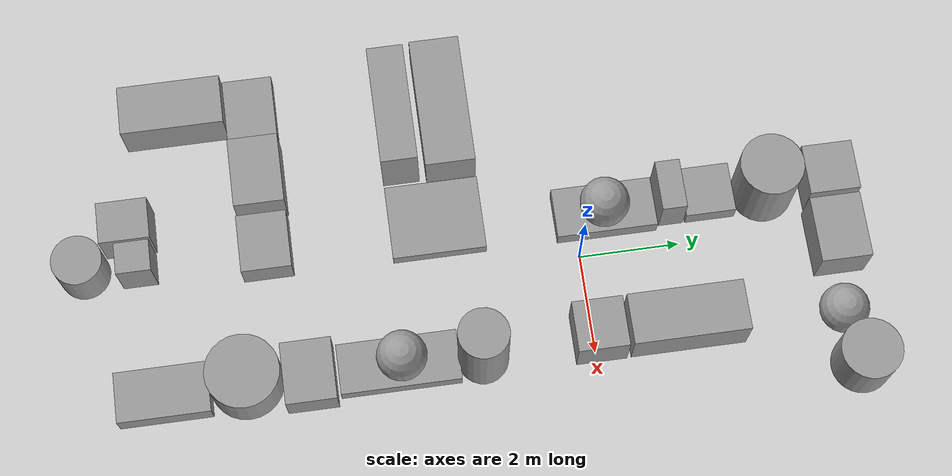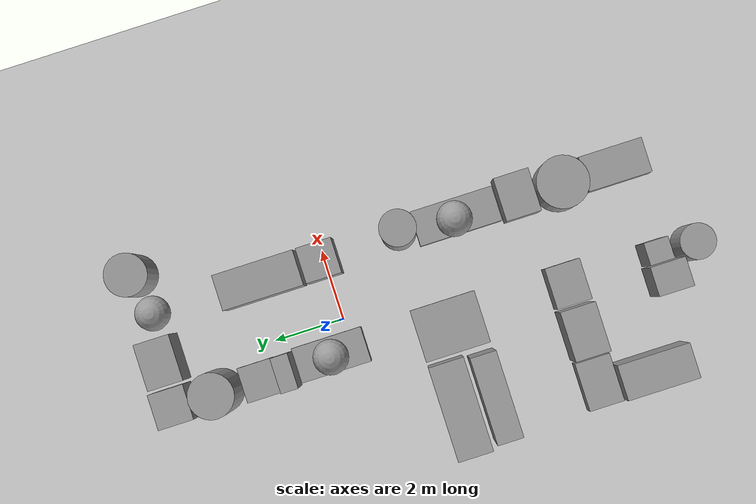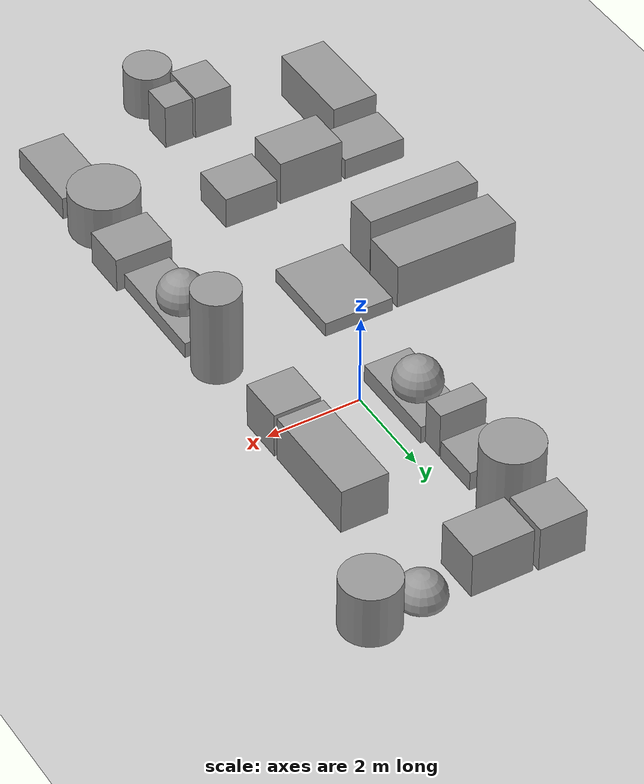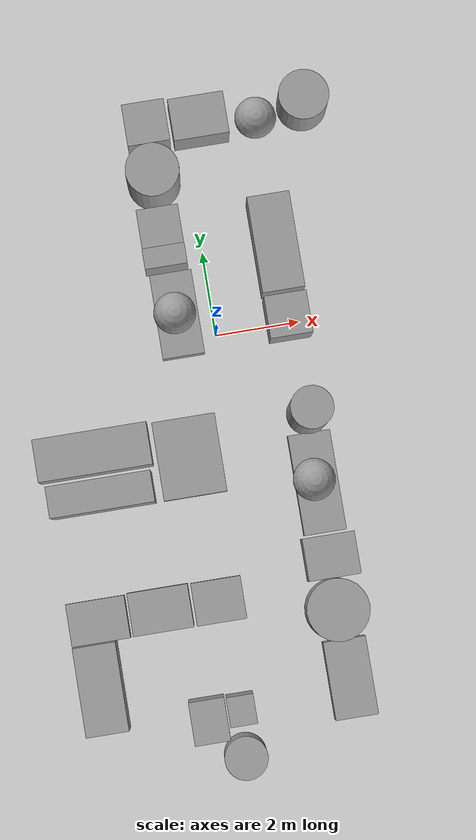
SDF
<sdf version="1.6">
 <world name="default">
  <model name="ground_plane">
   <static>1</static>
   <link name="link">
    <collision name="collision">
     <geometry><plane><normal>0 0 1</normal><size>100 100</size></plane></geometry>
     <surface>
      <contact><collide_bitmask>65535</collide_bitmask></contact>
      <friction><ode><mu>100</mu><mu2>50</mu2></ode></friction>
     </surface>
    </collision>
    <visual name="visual">
     <cast_shadows>0</cast_shadows>
     <geometry><plane><normal>0 0 1</normal><size>100 100</size></plane></geometry>
     <material>
      <script><uri>file://media/materials/scripts/gazebo.material</uri><name>Gazebo/Grey</name></script>
     </material>
    </visual>
   </link>
  </model>
  <model name="buildings">
   <link name="link_0">
    <inertial>
     <mass>2.05987</mass>
     <inertia><ixx>0.9</ixx><ixy>0</ixy><ixz>0</ixz><iyy>0.343312</iyy><iyz>0</iyz><izz>0.9</izz></inertia>
    </inertial>
    <pose>-3.65731 -5.49674 0.040889 0 -0 0</pose>
    <visual name="visual">
     <geometry><box><size>1 2.05987 1</size></box></geometry>
     <material>
      <lighting>1</lighting>
      <script><uri>file://media/materials/scripts/gazebo.material</uri><name>Gazebo/Grey</name></script>
     </material>
    </visual>
    <collision name="collision">
     <geometry><box><size>1 2.05987 1</size></box></geometry>
     <surface>
      <friction>
       <ode><mu>1</mu><mu2>1</mu2><fdir1>0 0 0</fdir1><slip1>0</slip1><slip2>0</slip2></ode>
       <torsional>
        <coefficient>1</coefficient>
        <patch_radius>0</patch_radius>
        <surface_radius>0</surface_radius>
        <use_patch_radius>1</use_patch_radius>
        <ode><slip>0</slip></ode>
       </torsional>
      </friction>
      <bounce><restitution_coefficient>0</restitution_coefficient><threshold>1e+06</threshold></bounce>
      <contact>
       <collide_without_contact>0</collide_without_contact>
       <collide_without_contact_bitmask>1</collide_without_contact_bitmask>
       <collide_bitmask>1</collide_bitmask>
       <ode>
        <soft_cfm>0</soft_cfm>
        <soft_erp>0.2</soft_erp>
        <kp>1e+13</kp>
        <kd>1</kd>
        <max_vel>0.01</max_vel>
        <min_depth>0</min_depth>
       </ode>
       <bullet>
        <split_impulse>1</split_impulse>
        <split_impulse_penetration_threshold>-0.01</split_impulse_penetration_threshold>
        <soft_cfm>0</soft_cfm>
        <soft_erp>0.2</soft_erp>
        <kp>1e+13</kp>
        <kd>1</kd>
       </bullet>
      </contact>
     </surface>
    </collision>
   </link>
   <link name="link_1">
    <inertial>
     <mass>0.657597</mass>
     <inertia>
      <ixx>0.067355</ixx>
      <ixy>0</ixy>
      <ixz>0</ixz>
      <iyy>0.115971</iyy>
      <iyz>0</iyz>
      <izz>0.158216</izz>
     </inertia>
    </inertial>
    <pose>-3.50191 -3.95273 -0.145196 0 -0 0</pose>
    <visual name="visual">
     <geometry><box><size>1.37374 1 0.478656</size></box></geometry>
     <material>
      <lighting>1</lighting>
      <script><uri>file://media/materials/scripts/gazebo.material</uri><name>Gazebo/Grey</name></script>
     </material>
    </visual>
    <collision name="collision">
     <geometry><box><size>1.37374 1 0.478656</size></box></geometry>
     <surface>
      <friction>
       <ode><mu>1</mu><mu2>1</mu2><fdir1>0 0 0</fdir1><slip1>0</slip1><slip2>0</slip2></ode>
       <torsional>
        <coefficient>1</coefficient>
        <patch_radius>0</patch_radius>
        <surface_radius>0</surface_radius>
        <use_patch_radius>1</use_patch_radius>
        <ode><slip>0</slip></ode>
       </torsional>
      </friction>
      <bounce><restitution_coefficient>0</restitution_coefficient><threshold>1e+06</threshold></bounce>
      <contact>
       <collide_without_contact>0</collide_without_contact>
       <collide_without_contact_bitmask>1</collide_without_contact_bitmask>
       <collide_bitmask>1</collide_bitmask>
       <ode>
        <soft_cfm>0</soft_cfm>
        <soft_erp>0.2</soft_erp>
        <kp>1e+13</kp>
        <kd>1</kd>
        <max_vel>0.01</max_vel>
        <min_depth>0</min_depth>
       </ode>
       <bullet>
        <split_impulse>1</split_impulse>
        <split_impulse_penetration_threshold>-0.01</split_impulse_penetration_threshold>
        <soft_cfm>0</soft_cfm>
        <soft_erp>0.2</soft_erp>
        <kp>1e+13</kp>
        <kd>1</kd>
       </bullet>
      </contact>
     </surface>
    </collision>
   </link>
   <link name="link_10">
    <inertial>
     <mass>1.22906</mass>
     <inertia>
      <ixx>0.204843</ixx>
      <ixy>0</ixy>
      <ixz>0</ixz>
      <iyy>0.257137</iyy>
      <iyz>0</iyz>
      <izz>0.257137</izz>
     </inertia>
    </inertial>
    <pose>2.09374 -3.3423 -0.211317 0 -0 0</pose>
    <visual name="visual">
     <geometry><box><size>1.22906 1 1</size></box></geometry>
     <material>
      <lighting>1</lighting>
      <script><uri>file://media/materials/scripts/gazebo.material</uri><name>Gazebo/Grey</name></script>
     </material>
    </visual>
    <collision name="collision">
     <geometry><box><size>1.22906 1 1</size></box></geometry>
     <surface>
      <friction>
       <ode><mu>1</mu><mu2>1</mu2><fdir1>0 0 0</fdir1><slip1>0</slip1><slip2>0</slip2></ode>
       <torsional>
        <coefficient>1</coefficient>
        <patch_radius>0</patch_radius>
        <surface_radius>0</surface_radius>
        <use_patch_radius>1</use_patch_radius>
        <ode><slip>0</slip></ode>
       </torsional>
      </friction>
      <bounce><restitution_coefficient>0</restitution_coefficient><threshold>1e+06</threshold></bounce>
      <contact>
       <collide_without_contact>0</collide_without_contact>
       <collide_without_contact_bitmask>1</collide_without_contact_bitmask>
       <collide_bitmask>1</collide_bitmask>
       <ode>
        <soft_cfm>0</soft_cfm>
        <soft_erp>0.2</soft_erp>
        <kp>1e+13</kp>
        <kd>1</kd>
        <max_vel>0.01</max_vel>
        <min_depth>0</min_depth>
       </ode>
       <bullet>
        <split_impulse>1</split_impulse>
        <split_impulse_penetration_threshold>-0.01</split_impulse_penetration_threshold>
        <soft_cfm>0</soft_cfm>
        <soft_erp>0.2</soft_erp>
        <kp>1e+13</kp>
        <kd>1</kd>
       </bullet>
      </contact>
     </surface>
    </collision>
   </link>
   <link name="link_11">
    <inertial>
     <mass>2.12736</mass>
     <inertia>
      <ixx>0.460131</ixx>
      <ixy>0</ixy>
      <ixz>0</ixz>
      <iyy>0.460131</iyy>
      <iyz>0</iyz>
      <izz>0.565703</izz>
     </inertia>
    </inertial>
    <pose>2.02003 -4.57597 0.124873 0 -0 0</pose>
    <visual name="visual">
     <geometry><cylinder><radius>0.729271</radius><length>1</length></cylinder></geometry>
     <material>
      <lighting>1</lighting>
      <script><uri>file://media/materials/scripts/gazebo.material</uri><name>Gazebo/Grey</name></script>
     </material>
    </visual>
    <collision name="collision">
     <geometry><cylinder><radius>0.729271</radius><length>1</length></cylinder></geometry>
     <surface>
      <friction>
       <ode><mu>1</mu><mu2>1</mu2><fdir1>0 0 0</fdir1><slip1>0</slip1><slip2>0</slip2></ode>
       <torsional>
        <coefficient>1</coefficient>
        <patch_radius>0</patch_radius>
        <surface_radius>0</surface_radius>
        <use_patch_radius>1</use_patch_radius>
        <ode><slip>0</slip></ode>
       </torsional>
      </friction>
      <bounce><restitution_coefficient>0</restitution_coefficient><threshold>1e+06</threshold></bounce>
      <contact>
       <collide_without_contact>0</collide_without_contact>
       <collide_without_contact_bitmask>1</collide_without_contact_bitmask>
       <collide_bitmask>1</collide_bitmask>
       <ode>
        <soft_cfm>0</soft_cfm>
        <soft_erp>0.2</soft_erp>
        <kp>1e+13</kp>
        <kd>1</kd>
        <max_vel>0.01</max_vel>
        <min_depth>0</min_depth>
       </ode>
       <bullet>
        <split_impulse>1</split_impulse>
        <split_impulse_penetration_threshold>-0.01</split_impulse_penetration_threshold>
        <soft_cfm>0</soft_cfm>
        <soft_erp>0.2</soft_erp>
        <kp>1e+13</kp>
        <kd>1</kd>
       </bullet>
      </contact>
     </surface>
    </collision>
   </link>
   <link name="link_12">
    <inertial>
     <mass>0.922792</mass>
     <inertia>
      <ixx>0.275517</ixx>
      <ixy>0</ixy>
      <ixz>0</ixz>
      <iyy>0.0965958</iyy>
      <iyz>0</iyz>
      <izz>0.33272</izz>
     </inertia>
    </inertial>
    <pose>2.07608 -6.19758 -0.205607 0 -0 0</pose>
    <visual name="visual">
     <geometry><box><size>1 1.82392 0.506096</size></box></geometry>
     <material>
      <lighting>1</lighting>
      <script><uri>file://media/materials/scripts/gazebo.material</uri><name>Gazebo/Grey</name></script>
     </material>
    </visual>
    <collision name="collision">
     <geometry><box><size>1 1.82392 0.506096</size></box></geometry>
     <surface>
      <friction>
       <ode><mu>1</mu><mu2>1</mu2><fdir1>0 0 0</fdir1><slip1>0</slip1><slip2>0</slip2></ode>
       <torsional>
        <coefficient>1</coefficient>
        <patch_radius>0</patch_radius>
        <surface_radius>0</surface_radius>
        <use_patch_radius>1</use_patch_radius>
        <ode><slip>0</slip></ode>
       </torsional>
      </friction>
      <bounce><restitution_coefficient>0</restitution_coefficient><threshold>1e+06</threshold></bounce>
      <contact>
       <collide_without_contact>0</collide_without_contact>
       <collide_without_contact_bitmask>1</collide_without_contact_bitmask>
       <collide_bitmask>1</collide_bitmask>
       <ode>
        <soft_cfm>0</soft_cfm>
        <soft_erp>0.2</soft_erp>
        <kp>1e+13</kp>
        <kd>1</kd>
        <max_vel>0.01</max_vel>
        <min_depth>0</min_depth>
       </ode>
       <bullet>
        <split_impulse>1</split_impulse>
        <split_impulse_penetration_threshold>-0.01</split_impulse_penetration_threshold>
        <soft_cfm>0</soft_cfm>
        <soft_erp>0.2</soft_erp>
        <kp>1e+13</kp>
        <kd>1</kd>
       </bullet>
      </contact>
     </surface>
    </collision>
   </link>
   <link name="link_13">
    <inertial>
     <mass>0.867163</mass>
     <inertia>
      <ixx>0.259684</ixx>
      <ixy>0</ixy>
      <ixz>0</ixz>
      <iyy>0.169359</iyy>
      <iyz>0</iyz>
      <izz>0.415215</izz>
     </inertia>
    </inertial>
    <pose>-0.790765 -0.511354 -0.245848 0 -0 0</pose>
    <visual name="visual">
     <geometry><box><size>1.49932 1.87027 0.309309</size></box></geometry>
     <material>
      <lighting>1</lighting>
      <script><uri>file://media/materials/scripts/gazebo.material</uri><name>Gazebo/Grey</name></script>
     </material>
    </visual>
    <collision name="collision">
     <geometry><box><size>1.49932 1.87027 0.309309</size></box></geometry>
     <surface>
      <friction>
       <ode><mu>1</mu><mu2>1</mu2><fdir1>0 0 0</fdir1><slip1>0</slip1><slip2>0</slip2></ode>
       <torsional>
        <coefficient>1</coefficient>
        <patch_radius>0</patch_radius>
        <surface_radius>0</surface_radius>
        <use_patch_radius>1</use_patch_radius>
        <ode><slip>0</slip></ode>
       </torsional>
      </friction>
      <bounce><restitution_coefficient>0</restitution_coefficient><threshold>1e+06</threshold></bounce>
      <contact>
       <collide_without_contact>0</collide_without_contact>
       <collide_without_contact_bitmask>1</collide_without_contact_bitmask>
       <collide_bitmask>1</collide_bitmask>
       <ode>
        <soft_cfm>0</soft_cfm>
        <soft_erp>0.2</soft_erp>
        <kp>1e+13</kp>
        <kd>1</kd>
        <max_vel>0.01</max_vel>
        <min_depth>0</min_depth>
       </ode>
       <bullet>
        <split_impulse>1</split_impulse>
        <split_impulse_penetration_threshold>-0.01</split_impulse_penetration_threshold>
        <soft_cfm>0</soft_cfm>
        <soft_erp>0.2</soft_erp>
        <kp>1e+13</kp>
        <kd>1</kd>
       </bullet>
      </contact>
     </surface>
    </collision>
   </link>
   <link name="link_14">
    <inertial>
     <mass>2.79733</mass>
     <inertia><ixx>0.692471</ixx><ixy>0</ixy><ixz>0</ixz><iyy>1.95677</iyy><iyz>0</iyz><izz>1.51593</izz></inertia>
    </inertial>
    <pose>-2.95025 -1.08442 0.124873 0 -0 0</pose>
    <visual name="visual">
     <geometry><box><size>2.44199 0.734656 1.55912</size></box></geometry>
     <material>
      <lighting>1</lighting>
      <script><uri>file://media/materials/scripts/gazebo.material</uri><name>Gazebo/Grey</name></script>
     </material>
    </visual>
    <collision name="collision">
     <geometry><box><size>2.44199 0.734656 1.55912</size></box></geometry>
     <surface>
      <friction>
       <ode><mu>1</mu><mu2>1</mu2><fdir1>0 0 0</fdir1><slip1>0</slip1><slip2>0</slip2></ode>
       <torsional>
        <coefficient>1</coefficient>
        <patch_radius>0</patch_radius>
        <surface_radius>0</surface_radius>
        <use_patch_radius>1</use_patch_radius>
        <ode><slip>0</slip></ode>
       </torsional>
      </friction>
      <bounce><restitution_coefficient>0</restitution_coefficient><threshold>1e+06</threshold></bounce>
      <contact>
       <collide_without_contact>0</collide_without_contact>
       <collide_without_contact_bitmask>1</collide_without_contact_bitmask>
       <collide_bitmask>1</collide_bitmask>
       <ode>
        <soft_cfm>0</soft_cfm>
        <soft_erp>0.2</soft_erp>
        <kp>1e+13</kp>
        <kd>1</kd>
        <max_vel>0.01</max_vel>
        <min_depth>0</min_depth>
       </ode>
       <bullet>
        <split_impulse>1</split_impulse>
        <split_impulse_penetration_threshold>-0.01</split_impulse_penetration_threshold>
        <soft_cfm>0</soft_cfm>
        <soft_erp>0.2</soft_erp>
        <kp>1e+13</kp>
        <kd>1</kd>
       </bullet>
      </contact>
     </surface>
    </collision>
   </link>
   <link name="link_15">
    <inertial>
     <mass>0.795978</mass>
     <inertia>
      <ixx>0.279163</ixx>
      <ixy>0</ixy>
      <ixz>0</ixz>
      <iyy>0.0767026</iyy>
      <iyz>0</iyz>
      <izz>0.335124</izz>
     </inertia>
    </inertial>
    <pose>-0.533513 2.86402 -0.241441 0 -0 0</pose>
    <visual name="visual">
     <geometry><box><size>1 2.01302 0.395414</size></box></geometry>
     <material>
      <lighting>1</lighting>
      <script><uri>file://media/materials/scripts/gazebo.material</uri><name>Gazebo/Grey</name></script>
     </material>
    </visual>
    <collision name="collision">
     <geometry><box><size>1 2.01302 0.395414</size></box></geometry>
     <surface>
      <friction>
       <ode><mu>1</mu><mu2>1</mu2><fdir1>0 0 0</fdir1><slip1>0</slip1><slip2>0</slip2></ode>
       <torsional>
        <coefficient>1</coefficient>
        <patch_radius>0</patch_radius>
        <surface_radius>0</surface_radius>
        <use_patch_radius>1</use_patch_radius>
        <ode><slip>0</slip></ode>
       </torsional>
      </friction>
      <bounce><restitution_coefficient>0</restitution_coefficient><threshold>1e+06</threshold></bounce>
      <contact>
       <collide_without_contact>0</collide_without_contact>
       <collide_without_contact_bitmask>1</collide_without_contact_bitmask>
       <collide_bitmask>1</collide_bitmask>
       <ode>
        <soft_cfm>0</soft_cfm>
        <soft_erp>0.2</soft_erp>
        <kp>1e+13</kp>
        <kd>1</kd>
        <max_vel>0.01</max_vel>
        <min_depth>0</min_depth>
       </ode>
       <bullet>
        <split_impulse>1</split_impulse>
        <split_impulse_penetration_threshold>-0.01</split_impulse_penetration_threshold>
        <soft_cfm>0</soft_cfm>
        <soft_erp>0.2</soft_erp>
        <kp>1e+13</kp>
        <kd>1</kd>
       </bullet>
      </contact>
     </surface>
    </collision>
   </link>
   <link name="link_16">
    <inertial>
     <mass>0.490895</mass>
     <inertia>
      <ixx>0.0507658</ixx>
      <ixy>0</ixy>
      <ixz>0</ixz>
      <iyy>0.0818158</iyy>
      <iyz>0</iyz>
      <izz>0.0507658</izz>
     </inertia>
    </inertial>
    <pose>-0.602063 4.16739 0.124873 0 -0 0</pose>
    <visual name="visual">
     <geometry><box><size>1 0.490896 1</size></box></geometry>
     <material>
      <lighting>1</lighting>
      <script><uri>file://media/materials/scripts/gazebo.material</uri><name>Gazebo/Grey</name></script>
     </material>
    </visual>
    <collision name="collision">
     <geometry><box><size>1 0.490896 1</size></box></geometry>
     <surface>
      <friction>
       <ode><mu>1</mu><mu2>1</mu2><fdir1>0 0 0</fdir1><slip1>0</slip1><slip2>0</slip2></ode>
       <torsional>
        <coefficient>1</coefficient>
        <patch_radius>0</patch_radius>
        <surface_radius>0</surface_radius>
        <use_patch_radius>1</use_patch_radius>
        <ode><slip>0</slip></ode>
       </torsional>
      </friction>
      <bounce><restitution_coefficient>0</restitution_coefficient><threshold>1e+06</threshold></bounce>
      <contact>
       <collide_without_contact>0</collide_without_contact>
       <collide_without_contact_bitmask>1</collide_without_contact_bitmask>
       <collide_bitmask>1</collide_bitmask>
       <ode>
        <soft_cfm>0</soft_cfm>
        <soft_erp>0.2</soft_erp>
        <kp>1e+13</kp>
        <kd>1</kd>
        <max_vel>0.01</max_vel>
        <min_depth>0</min_depth>
       </ode>
       <bullet>
        <split_impulse>1</split_impulse>
        <split_impulse_penetration_threshold>-0.01</split_impulse_penetration_threshold>
        <soft_cfm>0</soft_cfm>
        <soft_erp>0.2</soft_erp>
        <kp>1e+13</kp>
        <kd>1</kd>
       </bullet>
      </contact>
     </surface>
    </collision>
   </link>
   <link name="link_17">
    <inertial>
     <mass>0.420034</mass>
     <inertia>
      <ixx>0.0411783</ixx>
      <ixy>0</ixy>
      <ixz>0</ixz>
      <iyy>0.0411783</iyy>
      <iyz>0</iyz>
      <izz>0.0700057</izz>
     </inertia>
    </inertial>
    <pose>-0.598739 4.95645 -0.169955 0 -0 0</pose>
    <visual name="visual">
     <geometry><box><size>1 1 0.420032</size></box></geometry>
     <material>
      <lighting>1</lighting>
      <script><uri>file://media/materials/scripts/gazebo.material</uri><name>Gazebo/Grey</name></script>
     </material>
    </visual>
    <collision name="collision">
     <geometry><box><size>1 1 0.420032</size></box></geometry>
     <surface>
      <friction>
       <ode><mu>1</mu><mu2>1</mu2><fdir1>0 0 0</fdir1><slip1>0</slip1><slip2>0</slip2></ode>
       <torsional>
        <coefficient>1</coefficient>
        <patch_radius>0</patch_radius>
        <surface_radius>0</surface_radius>
        <use_patch_radius>1</use_patch_radius>
        <ode><slip>0</slip></ode>
       </torsional>
      </friction>
      <bounce><restitution_coefficient>0</restitution_coefficient><threshold>1e+06</threshold></bounce>
      <contact>
       <collide_without_contact>0</collide_without_contact>
       <collide_without_contact_bitmask>1</collide_without_contact_bitmask>
       <collide_bitmask>1</collide_bitmask>
       <ode>
        <soft_cfm>0</soft_cfm>
        <soft_erp>0.2</soft_erp>
        <kp>1e+13</kp>
        <kd>1</kd>
        <max_vel>0.01</max_vel>
        <min_depth>0</min_depth>
       </ode>
       <bullet>
        <split_impulse>1</split_impulse>
        <split_impulse_penetration_threshold>-0.01</split_impulse_penetration_threshold>
        <soft_cfm>0</soft_cfm>
        <soft_erp>0.2</soft_erp>
        <kp>1e+13</kp>
        <kd>1</kd>
       </bullet>
      </contact>
     </surface>
    </collision>
   </link>
   <link name="link_18">
    <inertial>
     <mass>3.4661</mass>
     <inertia><ixx>1.72412</ixx><ixy>0</ixy><ixz>0</ixz><iyy>1.72412</iyy><iyz>0</iyz><izz>0.68687</izz></inertia>
    </inertial>
    <pose>-0.565649 6.11246 0.056395 0 -0 0</pose>
    <visual name="visual">
     <geometry><cylinder><radius>0.629552</radius><length>2.18634</length></cylinder></geometry>
     <material>
      <lighting>1</lighting>
      <script><uri>file://media/materials/scripts/gazebo.material</uri><name>Gazebo/Grey</name></script>
     </material>
    </visual>
    <collision name="collision">
     <geometry><cylinder><radius>0.629552</radius><length>2.18634</length></cylinder></geometry>
     <surface>
      <friction>
       <ode><mu>1</mu><mu2>1</mu2><fdir1>0 0 0</fdir1><slip1>0</slip1><slip2>0</slip2></ode>
       <torsional>
        <coefficient>1</coefficient>
        <patch_radius>0</patch_radius>
        <surface_radius>0</surface_radius>
        <use_patch_radius>1</use_patch_radius>
        <ode><slip>0</slip></ode>
       </torsional>
      </friction>
      <bounce><restitution_coefficient>0</restitution_coefficient><threshold>1e+06</threshold></bounce>
      <contact>
       <collide_without_contact>0</collide_without_contact>
       <collide_without_contact_bitmask>1</collide_without_contact_bitmask>
       <collide_bitmask>1</collide_bitmask>
       <ode>
        <soft_cfm>0</soft_cfm>
        <soft_erp>0.2</soft_erp>
        <kp>1e+13</kp>
        <kd>1</kd>
        <max_vel>0.01</max_vel>
        <min_depth>0</min_depth>
       </ode>
       <bullet>
        <split_impulse>1</split_impulse>
        <split_impulse_penetration_threshold>-0.01</split_impulse_penetration_threshold>
        <soft_cfm>0</soft_cfm>
        <soft_erp>0.2</soft_erp>
        <kp>1e+13</kp>
        <kd>1</kd>
       </bullet>
      </contact>
     </surface>
    </collision>
   </link>
   <link name="link_19">
    <inertial>
     <mass>1</mass>
     <inertia>
      <ixx>0.166667</ixx>
      <ixy>0</ixy>
      <ixz>0</ixz>
      <iyy>0.166667</iyy>
      <iyz>0</iyz>
      <izz>0.166667</izz>
     </inertia>
    </inertial>
    <pose>-0.537522 7.36063 0.124873 0 -0 0</pose>
    <visual name="visual">
     <geometry><box><size>1 1 1</size></box></geometry>
     <material>
      <lighting>1</lighting>
      <script><uri>file://media/materials/scripts/gazebo.material</uri><name>Gazebo/Grey</name></script>
     </material>
    </visual>
    <collision name="collision">
     <geometry><box><size>1 1 1</size></box></geometry>
     <surface>
      <friction>
       <ode><mu>1</mu><mu2>1</mu2><fdir1>0 0 0</fdir1><slip1>0</slip1><slip2>0</slip2></ode>
       <torsional>
        <coefficient>1</coefficient>
        <patch_radius>0</patch_radius>
        <surface_radius>0</surface_radius>
        <use_patch_radius>1</use_patch_radius>
        <ode><slip>0</slip></ode>
       </torsional>
      </friction>
      <bounce><restitution_coefficient>0</restitution_coefficient><threshold>1e+06</threshold></bounce>
      <contact>
       <collide_without_contact>0</collide_without_contact>
       <collide_without_contact_bitmask>1</collide_without_contact_bitmask>
       <collide_bitmask>1</collide_bitmask>
       <ode>
        <soft_cfm>0</soft_cfm>
        <soft_erp>0.2</soft_erp>
        <kp>1e+13</kp>
        <kd>1</kd>
        <max_vel>0.01</max_vel>
        <min_depth>0</min_depth>
       </ode>
       <bullet>
        <split_impulse>1</split_impulse>
        <split_impulse_penetration_threshold>-0.01</split_impulse_penetration_threshold>
        <soft_cfm>0</soft_cfm>
        <soft_erp>0.2</soft_erp>
        <kp>1e+13</kp>
        <kd>1</kd>
       </bullet>
      </contact>
     </surface>
    </collision>
   </link>
   <link name="link_2">
    <inertial>
     <mass>1.41147</mass>
     <inertia>
      <ixx>0.235245</ixx>
      <ixy>0</ixy>
      <ixz>0</ixz>
      <iyy>0.351952</iyy>
      <iyz>0</iyz>
      <izz>0.351952</izz>
     </inertia>
    </inertial>
    <pose>-2.01513 -3.92318 0.124873 0 -0 0</pose>
    <visual name="visual">
     <geometry><box><size>1.41146 1 1</size></box></geometry>
     <material>
      <lighting>1</lighting>
      <script><uri>file://media/materials/scripts/gazebo.material</uri><name>Gazebo/Grey</name></script>
     </material>
    </visual>
    <collision name="collision">
     <geometry><box><size>1.41146 1 1</size></box></geometry>
     <surface>
      <friction>
       <ode><mu>1</mu><mu2>1</mu2><fdir1>0 0 0</fdir1><slip1>0</slip1><slip2>0</slip2></ode>
       <torsional>
        <coefficient>1</coefficient>
        <patch_radius>0</patch_radius>
        <surface_radius>0</surface_radius>
        <use_patch_radius>1</use_patch_radius>
        <ode><slip>0</slip></ode>
       </torsional>
      </friction>
      <bounce><restitution_coefficient>0</restitution_coefficient><threshold>1e+06</threshold></bounce>
      <contact>
       <collide_without_contact>0</collide_without_contact>
       <collide_without_contact_bitmask>1</collide_without_contact_bitmask>
       <collide_bitmask>1</collide_bitmask>
       <ode>
        <soft_cfm>0</soft_cfm>
        <soft_erp>0.2</soft_erp>
        <kp>1e+13</kp>
        <kd>1</kd>
        <max_vel>0.01</max_vel>
        <min_depth>0</min_depth>
       </ode>
       <bullet>
        <split_impulse>1</split_impulse>
        <split_impulse_penetration_threshold>-0.01</split_impulse_penetration_threshold>
        <soft_cfm>0</soft_cfm>
        <soft_erp>0.2</soft_erp>
        <kp>1e+13</kp>
        <kd>1</kd>
       </bullet>
      </contact>
     </surface>
    </collision>
   </link>
   <link name="link_20">
    <inertial>
     <mass>1.31075</mass>
     <inertia>
      <ixx>0.218458</ixx>
      <ixy>0</ixy>
      <ixz>0</ixz>
      <iyy>0.296891</iyy>
      <iyz>0</iyz>
      <izz>0.296891</izz>
     </inertia>
    </inertial>
    <pose>0.708746 7.31433 0.124873 0 -0 0</pose>
    <visual name="visual">
     <geometry><box><size>1.31075 1 1</size></box></geometry>
     <material>
      <lighting>1</lighting>
      <script><uri>file://media/materials/scripts/gazebo.material</uri><name>Gazebo/Grey</name></script>
     </material>
    </visual>
    <collision name="collision">
     <geometry><box><size>1.31075 1 1</size></box></geometry>
     <surface>
      <friction>
       <ode><mu>1</mu><mu2>1</mu2><fdir1>0 0 0</fdir1><slip1>0</slip1><slip2>0</slip2></ode>
       <torsional>
        <coefficient>1</coefficient>
        <patch_radius>0</patch_radius>
        <surface_radius>0</surface_radius>
        <use_patch_radius>1</use_patch_radius>
        <ode><slip>0</slip></ode>
       </torsional>
      </friction>
      <bounce><restitution_coefficient>0</restitution_coefficient><threshold>1e+06</threshold></bounce>
      <contact>
       <collide_without_contact>0</collide_without_contact>
       <collide_without_contact_bitmask>1</collide_without_contact_bitmask>
       <collide_bitmask>1</collide_bitmask>
       <ode>
        <soft_cfm>0</soft_cfm>
        <soft_erp>0.2</soft_erp>
        <kp>1e+13</kp>
        <kd>1</kd>
        <max_vel>0.01</max_vel>
        <min_depth>0</min_depth>
       </ode>
       <bullet>
        <split_impulse>1</split_impulse>
        <split_impulse_penetration_threshold>-0.01</split_impulse_penetration_threshold>
        <soft_cfm>0</soft_cfm>
        <soft_erp>0.2</soft_erp>
        <kp>1e+13</kp>
        <kd>1</kd>
       </bullet>
      </contact>
     </surface>
    </collision>
   </link>
   <link name="link_21">
    <inertial>
     <mass>1.6593</mass>
     <inertia>
      <ixx>0.334271</ixx>
      <ixy>0</ixy>
      <ixz>0</ixz>
      <iyy>0.334271</iyy>
      <iyz>0</iyz>
      <izz>0.296603</izz>
     </inertia>
    </inertial>
    <pose>3.22329 7.40405 0.124873 0 -0 0</pose>
    <visual name="visual">
     <geometry><cylinder><radius>0.597915</radius><length>1.15971</length></cylinder></geometry>
     <material>
      <lighting>1</lighting>
      <script><uri>file://media/materials/scripts/gazebo.material</uri><name>Gazebo/Grey</name></script>
     </material>
    </visual>
    <collision name="collision">
     <geometry><cylinder><radius>0.597915</radius><length>1.15971</length></cylinder></geometry>
     <surface>
      <friction>
       <ode><mu>1</mu><mu2>1</mu2><fdir1>0 0 0</fdir1><slip1>0</slip1><slip2>0</slip2></ode>
       <torsional>
        <coefficient>1</coefficient>
        <patch_radius>0</patch_radius>
        <surface_radius>0</surface_radius>
        <use_patch_radius>1</use_patch_radius>
        <ode><slip>0</slip></ode>
       </torsional>
      </friction>
      <bounce><restitution_coefficient>0</restitution_coefficient><threshold>1e+06</threshold></bounce>
      <contact>
       <collide_without_contact>0</collide_without_contact>
       <collide_without_contact_bitmask>1</collide_without_contact_bitmask>
       <collide_bitmask>1</collide_bitmask>
       <ode>
        <soft_cfm>0</soft_cfm>
        <soft_erp>0.2</soft_erp>
        <kp>1e+13</kp>
        <kd>1</kd>
        <max_vel>0.01</max_vel>
        <min_depth>0</min_depth>
       </ode>
       <bullet>
        <split_impulse>1</split_impulse>
        <split_impulse_penetration_threshold>-0.01</split_impulse_penetration_threshold>
        <soft_cfm>0</soft_cfm>
        <soft_erp>0.2</soft_erp>
        <kp>1e+13</kp>
        <kd>1</kd>
       </bullet>
      </contact>
     </surface>
    </collision>
   </link>
   <link name="link_22">
    <inertial>
     <mass>1</mass>
     <inertia><ixx>0.1</ixx><ixy>0</ixy><ixz>0</ixz><iyy>0.1</iyy><iyz>0</iyz><izz>0.1</izz></inertia>
    </inertial>
    <pose>2.08557 7.29942 -0.392468 0 -0 0</pose>
    <visual name="visual">
     <geometry><sphere><radius>0.5</radius></sphere></geometry>
     <material>
      <lighting>1</lighting>
      <script><uri>file://media/materials/scripts/gazebo.material</uri><name>Gazebo/Grey</name></script>
     </material>
    </visual>
    <collision name="collision">
     <geometry><sphere><radius>0.5</radius></sphere></geometry>
     <surface>
      <friction>
       <ode><mu>1</mu><mu2>1</mu2><fdir1>0 0 0</fdir1><slip1>0</slip1><slip2>0</slip2></ode>
       <torsional>
        <coefficient>1</coefficient>
        <patch_radius>0</patch_radius>
        <surface_radius>0</surface_radius>
        <use_patch_radius>1</use_patch_radius>
        <ode><slip>0</slip></ode>
       </torsional>
      </friction>
      <bounce><restitution_coefficient>0</restitution_coefficient><threshold>1e+06</threshold></bounce>
      <contact>
       <collide_without_contact>0</collide_without_contact>
       <collide_without_contact_bitmask>1</collide_without_contact_bitmask>
       <collide_bitmask>1</collide_bitmask>
       <ode>
        <soft_cfm>0</soft_cfm>
        <soft_erp>0.2</soft_erp>
        <kp>1e+13</kp>
        <kd>1</kd>
        <max_vel>0.01</max_vel>
        <min_depth>0</min_depth>
       </ode>
       <bullet>
        <split_impulse>1</split_impulse>
        <split_impulse_penetration_threshold>-0.01</split_impulse_penetration_threshold>
        <soft_cfm>0</soft_cfm>
        <soft_erp>0.2</soft_erp>
        <kp>1e+13</kp>
        <kd>1</kd>
       </bullet>
      </contact>
     </surface>
    </collision>
   </link>
   <link name="link_23">
    <inertial>
     <mass>2.67458</mass>
     <inertia><ixx>0.445763</ixx><ixy>0</ixy><ixz>0</ixz><iyy>1.81724</iyy><iyz>0</iyz><izz>1.81724</izz></inertia>
    </inertial>
    <pose>-2.98912 -0.080011 0.124873 0 -0 0</pose>
    <visual name="visual">
     <geometry><box><size>2.67458 1 1</size></box></geometry>
     <material>
      <lighting>1</lighting>
      <script><uri>file://media/materials/scripts/gazebo.material</uri><name>Gazebo/Grey</name></script>
     </material>
    </visual>
    <collision name="collision">
     <geometry><box><size>2.67458 1 1</size></box></geometry>
     <surface>
      <friction>
       <ode><mu>1</mu><mu2>1</mu2><fdir1>0 0 0</fdir1><slip1>0</slip1><slip2>0</slip2></ode>
       <torsional>
        <coefficient>1</coefficient>
        <patch_radius>0</patch_radius>
        <surface_radius>0</surface_radius>
        <use_patch_radius>1</use_patch_radius>
        <ode><slip>0</slip></ode>
       </torsional>
      </friction>
      <bounce><restitution_coefficient>0</restitution_coefficient><threshold>1e+06</threshold></bounce>
      <contact>
       <collide_without_contact>0</collide_without_contact>
       <collide_without_contact_bitmask>1</collide_without_contact_bitmask>
       <collide_bitmask>1</collide_bitmask>
       <ode>
        <soft_cfm>0</soft_cfm>
        <soft_erp>0.2</soft_erp>
        <kp>1e+13</kp>
        <kd>1</kd>
        <max_vel>0.01</max_vel>
        <min_depth>0</min_depth>
       </ode>
       <bullet>
        <split_impulse>1</split_impulse>
        <split_impulse_penetration_threshold>-0.01</split_impulse_penetration_threshold>
        <soft_cfm>0</soft_cfm>
        <soft_erp>0.2</soft_erp>
        <kp>1e+13</kp>
        <kd>1</kd>
       </bullet>
      </contact>
     </surface>
    </collision>
   </link>
   <link name="link_24">
    <inertial>
     <mass>0.827559</mass>
     <inertia>
      <ixx>0.137927</ixx>
      <ixy>0</ixy>
      <ixz>0</ixz>
      <iyy>0.116194</iyy>
      <iyz>0</iyz>
      <izz>0.116194</izz>
     </inertia>
    </inertial>
    <pose>-1.3109 -6.60438 0.124873 0 -0 0</pose>
    <visual name="visual">
     <geometry><box><size>0.827567 1 1</size></box></geometry>
     <material>
      <lighting>1</lighting>
      <script><uri>file://media/materials/scripts/gazebo.material</uri><name>Gazebo/Grey</name></script>
     </material>
    </visual>
    <collision name="collision">
     <geometry><box><size>0.827567 1 1</size></box></geometry>
     <surface>
      <friction>
       <ode><mu>1</mu><mu2>1</mu2><fdir1>0 0 0</fdir1><slip1>0</slip1><slip2>0</slip2></ode>
       <torsional>
        <coefficient>1</coefficient>
        <patch_radius>0</patch_radius>
        <surface_radius>0</surface_radius>
        <use_patch_radius>1</use_patch_radius>
        <ode><slip>0</slip></ode>
       </torsional>
      </friction>
      <bounce><restitution_coefficient>0</restitution_coefficient><threshold>1e+06</threshold></bounce>
      <contact>
       <collide_without_contact>0</collide_without_contact>
       <collide_without_contact_bitmask>1</collide_without_contact_bitmask>
       <collide_bitmask>1</collide_bitmask>
       <ode>
        <soft_cfm>0</soft_cfm>
        <soft_erp>0.2</soft_erp>
        <kp>1e+13</kp>
        <kd>1</kd>
        <max_vel>0.01</max_vel>
        <min_depth>0</min_depth>
       </ode>
       <bullet>
        <split_impulse>1</split_impulse>
        <split_impulse_penetration_threshold>-0.01</split_impulse_penetration_threshold>
        <soft_cfm>0</soft_cfm>
        <soft_erp>0.2</soft_erp>
        <kp>1e+13</kp>
        <kd>1</kd>
       </bullet>
      </contact>
     </surface>
    </collision>
   </link>
   <link name="link_25">
    <inertial>
     <mass>1</mass>
     <inertia><ixx>0.1</ixx><ixy>0</ixy><ixz>0</ixz><iyy>0.1</iyy><iyz>0</iyz><izz>0.1</izz></inertia>
    </inertial>
    <pose>-0.582316 2.87554 0.124873 0 -0 0</pose>
    <visual name="visual">
     <geometry><sphere><radius>0.5</radius></sphere></geometry>
     <material>
      <lighting>1</lighting>
      <script><uri>file://media/materials/scripts/gazebo.material</uri><name>Gazebo/Grey</name></script>
     </material>
    </visual>
    <collision name="collision">
     <geometry><sphere><radius>0.5</radius></sphere></geometry>
     <surface>
      <friction>
       <ode><mu>1</mu><mu2>1</mu2><fdir1>0 0 0</fdir1><slip1>0</slip1><slip2>0</slip2></ode>
       <torsional>
        <coefficient>1</coefficient>
        <patch_radius>0</patch_radius>
        <surface_radius>0</surface_radius>
        <use_patch_radius>1</use_patch_radius>
        <ode><slip>0</slip></ode>
       </torsional>
      </friction>
      <bounce><restitution_coefficient>0</restitution_coefficient><threshold>1e+06</threshold></bounce>
      <contact>
       <collide_without_contact>0</collide_without_contact>
       <collide_without_contact_bitmask>1</collide_without_contact_bitmask>
       <collide_bitmask>1</collide_bitmask>
       <ode>
        <soft_cfm>0</soft_cfm>
        <soft_erp>0.2</soft_erp>
        <kp>1e+13</kp>
        <kd>1</kd>
        <max_vel>0.01</max_vel>
        <min_depth>0</min_depth>
       </ode>
       <bullet>
        <split_impulse>1</split_impulse>
        <split_impulse_penetration_threshold>-0.01</split_impulse_penetration_threshold>
        <soft_cfm>0</soft_cfm>
        <soft_erp>0.2</soft_erp>
        <kp>1e+13</kp>
        <kd>1</kd>
       </bullet>
      </contact>
     </surface>
    </collision>
   </link>
   <link name="link_28">
    <inertial>
     <mass>1</mass>
     <inertia><ixx>0.1</ixx><ixy>0</ixy><ixz>0</ixz><iyy>0.1</iyy><iyz>0</iyz><izz>0.1</izz></inertia>
    </inertial>
    <pose>2.0022 -1.51796 0.124873 0 -0 0</pose>
    <visual name="visual">
     <geometry><sphere><radius>0.5</radius></sphere></geometry>
     <material>
      <lighting>1</lighting>
      <script><uri>file://media/materials/scripts/gazebo.material</uri><name>Gazebo/Grey</name></script>
     </material>
    </visual>
    <collision name="collision">
     <geometry><sphere><radius>0.5</radius></sphere></geometry>
     <surface>
      <friction>
       <ode><mu>1</mu><mu2>1</mu2><fdir1>0 0 0</fdir1><slip1>0</slip1><slip2>0</slip2></ode>
       <torsional>
        <coefficient>1</coefficient>
        <patch_radius>0</patch_radius>
        <surface_radius>0</surface_radius>
        <use_patch_radius>1</use_patch_radius>
        <ode><slip>0</slip></ode>
       </torsional>
      </friction>
      <bounce><restitution_coefficient>0</restitution_coefficient><threshold>1e+06</threshold></bounce>
      <contact>
       <collide_without_contact>0</collide_without_contact>
       <collide_without_contact_bitmask>1</collide_without_contact_bitmask>
       <collide_bitmask>1</collide_bitmask>
       <ode>
        <soft_cfm>0</soft_cfm>
        <soft_erp>0.2</soft_erp>
        <kp>1e+13</kp>
        <kd>1</kd>
        <max_vel>0.01</max_vel>
        <min_depth>0</min_depth>
       </ode>
       <bullet>
        <split_impulse>1</split_impulse>
        <split_impulse_penetration_threshold>-0.01</split_impulse_penetration_threshold>
        <soft_cfm>0</soft_cfm>
        <soft_erp>0.2</soft_erp>
        <kp>1e+13</kp>
        <kd>1</kd>
       </bullet>
      </contact>
     </surface>
    </collision>
   </link>
   <link name="link_29">
    <inertial>
     <mass>1</mass>
     <inertia>
      <ixx>0.166667</ixx>
      <ixy>0</ixy>
      <ixz>0</ixz>
      <iyy>0.166667</iyy>
      <iyz>0</iyz>
      <izz>0.166667</izz>
     </inertia>
    </inertial>
    <pose>2.01913 2.35308 0.124873 0 -0 0</pose>
    <visual name="visual">
     <geometry><box><size>1 1 1</size></box></geometry>
     <material>
      <lighting>1</lighting>
      <script><uri>file://media/materials/scripts/gazebo.material</uri><name>Gazebo/Grey</name></script>
     </material>
    </visual>
    <collision name="collision">
     <geometry><box><size>1 1 1</size></box></geometry>
     <surface>
      <friction>
       <ode><mu>1</mu><mu2>1</mu2><fdir1>0 0 0</fdir1><slip1>0</slip1><slip2>0</slip2></ode>
       <torsional>
        <coefficient>1</coefficient>
        <patch_radius>0</patch_radius>
        <surface_radius>0</surface_radius>
        <use_patch_radius>1</use_patch_radius>
        <ode><slip>0</slip></ode>
       </torsional>
      </friction>
      <bounce><restitution_coefficient>0</restitution_coefficient><threshold>1e+06</threshold></bounce>
      <contact>
       <collide_without_contact>0</collide_without_contact>
       <collide_without_contact_bitmask>1</collide_without_contact_bitmask>
       <collide_bitmask>1</collide_bitmask>
       <ode>
        <soft_cfm>0</soft_cfm>
        <soft_erp>0.2</soft_erp>
        <kp>1e+13</kp>
        <kd>1</kd>
        <max_vel>0.01</max_vel>
        <min_depth>0</min_depth>
       </ode>
       <bullet>
        <split_impulse>1</split_impulse>
        <split_impulse_penetration_threshold>-0.01</split_impulse_penetration_threshold>
        <soft_cfm>0</soft_cfm>
        <soft_erp>0.2</soft_erp>
        <kp>1e+13</kp>
        <kd>1</kd>
       </bullet>
      </contact>
     </surface>
    </collision>
   </link>
   <link name="link_3">
    <inertial>
     <mass>1.11312</mass>
     <inertia>
      <ixx>0.176977</ixx>
      <ixy>0</ixy>
      <ixz>0</ixz>
      <iyy>0.210805</iyy>
      <iyz>0</iyz>
      <izz>0.219347</izz>
     </inertia>
    </inertial>
    <pose>-0.657038 -3.94035 -0.25233 0 -0 0</pose>
    <visual name="visual">
     <geometry><box><size>1.16819 1 0.95284</size></box></geometry>
     <material>
      <lighting>1</lighting>
      <script><uri>file://media/materials/scripts/gazebo.material</uri><name>Gazebo/Grey</name></script>
     </material>
    </visual>
    <collision name="collision">
     <geometry><box><size>1.16819 1 0.95284</size></box></geometry>
     <surface>
      <friction>
       <ode><mu>1</mu><mu2>1</mu2><fdir1>0 0 0</fdir1><slip1>0</slip1><slip2>0</slip2></ode>
       <torsional>
        <coefficient>1</coefficient>
        <patch_radius>0</patch_radius>
        <surface_radius>0</surface_radius>
        <use_patch_radius>1</use_patch_radius>
        <ode><slip>0</slip></ode>
       </torsional>
      </friction>
      <bounce><restitution_coefficient>0</restitution_coefficient><threshold>1e+06</threshold></bounce>
      <contact>
       <collide_without_contact>0</collide_without_contact>
       <collide_without_contact_bitmask>1</collide_without_contact_bitmask>
       <collide_bitmask>1</collide_bitmask>
       <ode>
        <soft_cfm>0</soft_cfm>
        <soft_erp>0.2</soft_erp>
        <kp>1e+13</kp>
        <kd>1</kd>
        <max_vel>0.01</max_vel>
        <min_depth>0</min_depth>
       </ode>
       <bullet>
        <split_impulse>1</split_impulse>
        <split_impulse_penetration_threshold>-0.01</split_impulse_penetration_threshold>
        <soft_cfm>0</soft_cfm>
        <soft_erp>0.2</soft_erp>
        <kp>1e+13</kp>
        <kd>1</kd>
       </bullet>
      </contact>
     </surface>
    </collision>
   </link>
   <link name="link_30">
    <inertial>
     <mass>2.28572</mass>
     <inertia><ixx>1.18564</ixx><ixy>0</ixy><ixz>0</ixz><iyy>0.380953</iyy><iyz>0</iyz><izz>1.18564</izz></inertia>
    </inertial>
    <pose>2.01048 4.08008 0.124873 0 -0 0</pose>
    <visual name="visual">
     <geometry><box><size>1 2.28573 1</size></box></geometry>
     <material>
      <lighting>1</lighting>
      <script><uri>file://media/materials/scripts/gazebo.material</uri><name>Gazebo/Grey</name></script>
     </material>
    </visual>
    <collision name="collision">
     <geometry><box><size>1 2.28573 1</size></box></geometry>
     <surface>
      <friction>
       <ode><mu>1</mu><mu2>1</mu2><fdir1>0 0 0</fdir1><slip1>0</slip1><slip2>0</slip2></ode>
       <torsional>
        <coefficient>1</coefficient>
        <patch_radius>0</patch_radius>
        <surface_radius>0</surface_radius>
        <use_patch_radius>1</use_patch_radius>
        <ode><slip>0</slip></ode>
       </torsional>
      </friction>
      <bounce><restitution_coefficient>0</restitution_coefficient><threshold>1e+06</threshold></bounce>
      <contact>
       <collide_without_contact>0</collide_without_contact>
       <collide_without_contact_bitmask>1</collide_without_contact_bitmask>
       <collide_bitmask>1</collide_bitmask>
       <ode>
        <soft_cfm>0</soft_cfm>
        <soft_erp>0.2</soft_erp>
        <kp>1e+13</kp>
        <kd>1</kd>
        <max_vel>0.01</max_vel>
        <min_depth>0</min_depth>
       </ode>
       <bullet>
        <split_impulse>1</split_impulse>
        <split_impulse_penetration_threshold>-0.01</split_impulse_penetration_threshold>
        <soft_cfm>0</soft_cfm>
        <soft_erp>0.2</soft_erp>
        <kp>1e+13</kp>
        <kd>1</kd>
       </bullet>
      </contact>
     </surface>
    </collision>
   </link>
   <link name="link_4">
    <inertial>
     <mass>0.432236</mass>
     <inertia>
      <ixx>0.0529899</ixx>
      <ixy>0</ixy>
      <ixz>0</ixz>
      <iyy>0.0503042</iyy>
      <iyz>0</iyz>
      <izz>0.0312546</izz>
     </inertia>
    </inertial>
    <pose>-0.541727 -6.47509 0.124873 0 -0 0</pose>
    <visual name="visual">
     <geometry><box><size>0.629741 0.686394 1</size></box></geometry>
     <material>
      <lighting>1</lighting>
      <script><uri>file://media/materials/scripts/gazebo.material</uri><name>Gazebo/Grey</name></script>
     </material>
    </visual>
    <collision name="collision">
     <geometry><box><size>0.629741 0.686394 1</size></box></geometry>
     <surface>
      <friction>
       <ode><mu>1</mu><mu2>1</mu2><fdir1>0 0 0</fdir1><slip1>0</slip1><slip2>0</slip2></ode>
       <torsional>
        <coefficient>1</coefficient>
        <patch_radius>0</patch_radius>
        <surface_radius>0</surface_radius>
        <use_patch_radius>1</use_patch_radius>
        <ode><slip>0</slip></ode>
       </torsional>
      </friction>
      <bounce><restitution_coefficient>0</restitution_coefficient><threshold>1e+06</threshold></bounce>
      <contact>
       <collide_without_contact>0</collide_without_contact>
       <collide_without_contact_bitmask>1</collide_without_contact_bitmask>
       <collide_bitmask>1</collide_bitmask>
       <ode>
        <soft_cfm>0</soft_cfm>
        <soft_erp>0.2</soft_erp>
        <kp>1e+13</kp>
        <kd>1</kd>
        <max_vel>0.01</max_vel>
        <min_depth>0</min_depth>
       </ode>
       <bullet>
        <split_impulse>1</split_impulse>
        <split_impulse_penetration_threshold>-0.01</split_impulse_penetration_threshold>
        <soft_cfm>0</soft_cfm>
        <soft_erp>0.2</soft_erp>
        <kp>1e+13</kp>
        <kd>1</kd>
       </bullet>
      </contact>
     </surface>
    </collision>
   </link>
   <link name="link_7">
    <inertial>
     <mass>1</mass>
     <inertia><ixx>0.145833</ixx><ixy>0</ixy><ixz>0</ixz><iyy>0.145833</iyy><iyz>0</iyz><izz>0.125</izz></inertia>
    </inertial>
    <pose>-0.612574 -7.55462 0.124873 0 -0 0</pose>
    <visual name="visual">
     <geometry><cylinder><radius>0.5</radius><length>1</length></cylinder></geometry>
     <material>
      <lighting>1</lighting>
      <script><uri>file://media/materials/scripts/gazebo.material</uri><name>Gazebo/Grey</name></script>
     </material>
    </visual>
    <collision name="collision">
     <geometry><cylinder><radius>0.5</radius><length>1</length></cylinder></geometry>
     <surface>
      <friction>
       <ode><mu>1</mu><mu2>1</mu2><fdir1>0 0 0</fdir1><slip1>0</slip1><slip2>0</slip2></ode>
       <torsional>
        <coefficient>1</coefficient>
        <patch_radius>0</patch_radius>
        <surface_radius>0</surface_radius>
        <use_patch_radius>1</use_patch_radius>
        <ode><slip>0</slip></ode>
       </torsional>
      </friction>
      <bounce><restitution_coefficient>0</restitution_coefficient><threshold>1e+06</threshold></bounce>
      <contact>
       <collide_without_contact>0</collide_without_contact>
       <collide_without_contact_bitmask>1</collide_without_contact_bitmask>
       <collide_bitmask>1</collide_bitmask>
       <ode>
        <soft_cfm>0</soft_cfm>
        <soft_erp>0.2</soft_erp>
        <kp>1e+13</kp>
        <kd>1</kd>
        <max_vel>0.01</max_vel>
        <min_depth>0</min_depth>
       </ode>
       <bullet>
        <split_impulse>1</split_impulse>
        <split_impulse_penetration_threshold>-0.01</split_impulse_penetration_threshold>
        <soft_cfm>0</soft_cfm>
        <soft_erp>0.2</soft_erp>
        <kp>1e+13</kp>
        <kd>1</kd>
       </bullet>
      </contact>
     </surface>
    </collision>
   </link>
   <link name="link_8">
    <inertial>
     <mass>2.70417</mass>
     <inertia><ixx>1.81684</ixx><ixy>0</ixy><ixz>0</ixz><iyy>1.81684</iyy><iyz>0</iyz><izz>0.338021</izz></inertia>
    </inertial>
    <pose>2.13868 0.061626 0.124873 0 -0 0</pose>
    <visual name="visual">
     <geometry><cylinder><radius>0.5</radius><length>2.70415</length></cylinder></geometry>
     <material>
      <lighting>1</lighting>
      <script><uri>file://media/materials/scripts/gazebo.material</uri><name>Gazebo/Grey</name></script>
     </material>
    </visual>
    <collision name="collision">
     <geometry><cylinder><radius>0.5</radius><length>2.70415</length></cylinder></geometry>
     <surface>
      <friction>
       <ode><mu>1</mu><mu2>1</mu2><fdir1>0 0 0</fdir1><slip1>0</slip1><slip2>0</slip2></ode>
       <torsional>
        <coefficient>1</coefficient>
        <patch_radius>0</patch_radius>
        <surface_radius>0</surface_radius>
        <use_patch_radius>1</use_patch_radius>
        <ode><slip>0</slip></ode>
       </torsional>
      </friction>
      <bounce><restitution_coefficient>0</restitution_coefficient><threshold>1e+06</threshold></bounce>
      <contact>
       <collide_without_contact>0</collide_without_contact>
       <collide_without_contact_bitmask>1</collide_without_contact_bitmask>
       <collide_bitmask>1</collide_bitmask>
       <ode>
        <soft_cfm>0</soft_cfm>
        <soft_erp>0.2</soft_erp>
        <kp>1e+13</kp>
        <kd>1</kd>
        <max_vel>0.01</max_vel>
        <min_depth>0</min_depth>
       </ode>
       <bullet>
        <split_impulse>1</split_impulse>
        <split_impulse_penetration_threshold>-0.01</split_impulse_penetration_threshold>
        <soft_cfm>0</soft_cfm>
        <soft_erp>0.2</soft_erp>
        <kp>1e+13</kp>
        <kd>1</kd>
       </bullet>
      </contact>
     </surface>
    </collision>
   </link>
   <link name="link_9">
    <inertial>
     <mass>0.825897</mass>
     <inertia>
      <ixx>0.395496</ixx>
      <ixy>0</ixy>
      <ixz>0</ixz>
      <iyy>0.0771702</iyy>
      <iyz>0</iyz>
      <izz>0.455975</izz>
     </inertia>
    </inertial>
    <pose>2.06858 -1.59239 -0.231088 0 -0 0</pose>
    <visual name="visual">
     <geometry><box><size>1 2.37174 0.348219</size></box></geometry>
     <material>
      <lighting>1</lighting>
      <script><uri>file://media/materials/scripts/gazebo.material</uri><name>Gazebo/Grey</name></script>
     </material>
    </visual>
    <collision name="collision">
     <geometry><box><size>1 2.37174 0.348219</size></box></geometry>
     <surface>
      <friction>
       <ode><mu>1</mu><mu2>1</mu2><fdir1>0 0 0</fdir1><slip1>0</slip1><slip2>0</slip2></ode>
       <torsional>
        <coefficient>1</coefficient>
        <patch_radius>0</patch_radius>
        <surface_radius>0</surface_radius>
        <use_patch_radius>1</use_patch_radius>
        <ode><slip>0</slip></ode>
       </torsional>
      </friction>
      <bounce><restitution_coefficient>0</restitution_coefficient><threshold>1e+06</threshold></bounce>
      <contact>
       <collide_without_contact>0</collide_without_contact>
       <collide_without_contact_bitmask>1</collide_without_contact_bitmask>
       <collide_bitmask>1</collide_bitmask>
       <ode>
        <soft_cfm>0</soft_cfm>
        <soft_erp>0.2</soft_erp>
        <kp>1e+13</kp>
        <kd>1</kd>
        <max_vel>0.01</max_vel>
        <min_depth>0</min_depth>
       </ode>
       <bullet>
        <split_impulse>1</split_impulse>
        <split_impulse_penetration_threshold>-0.01</split_impulse_penetration_threshold>
        <soft_cfm>0</soft_cfm>
        <soft_erp>0.2</soft_erp>
        <kp>1e+13</kp>
        <kd>1</kd>
       </bullet>
      </contact>
     </surface>
    </collision>
   </link>
   <static>0</static>
   <pose>-0.305587 -2.26258 0.458023 -0.000244 -0 0.000496</pose>
  </model>
 </world>
</sdf>
